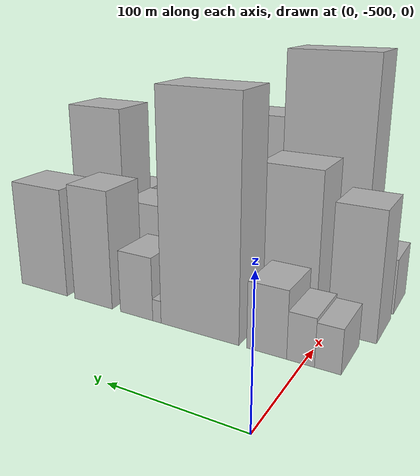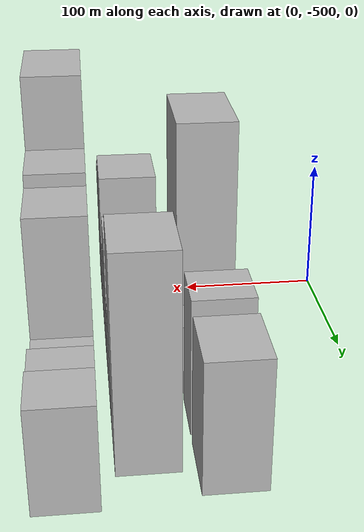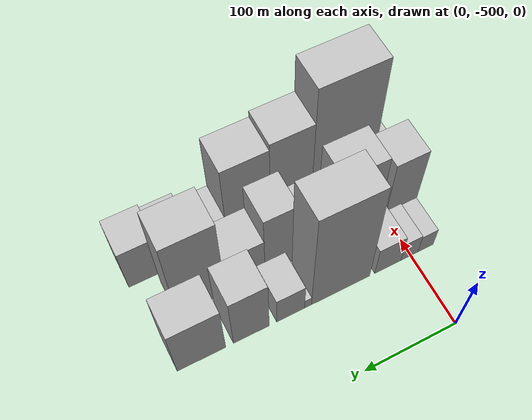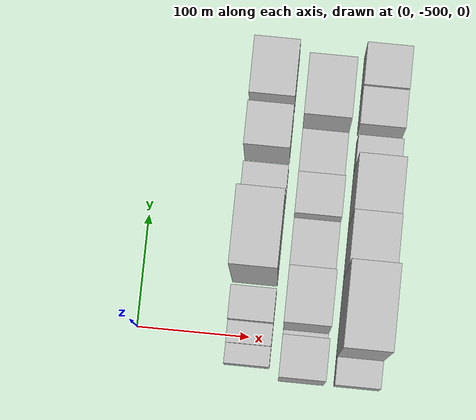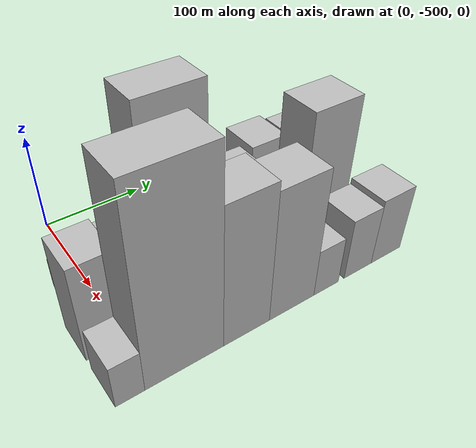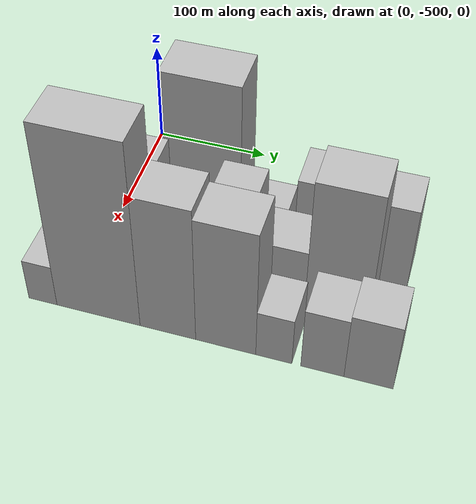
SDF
<sdf version="1.6">
 <world name="default">
  <model name="building_1">
   <static>1</static>
   <pose>100.0000 -516.9672 0 0.000000 0.000000 0.000000</pose>
   <link name="link">
    <pose>0 0 16.50 0 0 0</pose>
    <collision name="collision"><geometry><box><size>40.0000 18.0656 33.0000</size></box></geometry></collision>
    <visual name="visual">
     <cast_shadows>0</cast_shadows>
     <geometry><box><size>40.0000 18.0656 33.0000</size></box></geometry>
     <material>
      <script>
       <uri>model://HANNAS_wall/materials/scripts</uri>
       <uri>model://HANNAS_wall/materials/textures</uri>
       <name>vrc/HANNAS_wall</name>
      </script>
     </material>
    </visual>
   </link>
  </model>
  <model name="building_2">
   <static>1</static>
   <pose>100.0000 -498.0871 0 0.000000 0.000000 0.000000</pose>
   <link name="link">
    <pose>0 0 18.00 0 0 0</pose>
    <collision name="collision"><geometry><box><size>40.0000 19.6946 36.0000</size></box></geometry></collision>
    <visual name="visual">
     <cast_shadows>0</cast_shadows>
     <geometry><box><size>40.0000 19.6946 36.0000</size></box></geometry>
     <material>
      <script>
       <uri>model://HANNAS_wall/materials/scripts</uri>
       <uri>model://HANNAS_wall/materials/textures</uri>
       <name>vrc/HANNAS_wall</name>
      </script>
     </material>
    </visual>
   </link>
  </model>
  <model name="building_3">
   <static>1</static>
   <pose>100.0000 -473.3525 0 0.000000 0.000000 0.000000</pose>
   <link name="link">
    <pose>0 0 25.50 0 0 0</pose>
    <collision name="collision"><geometry><box><size>40.0000 29.7748 51.0000</size></box></geometry></collision>
    <visual name="visual">
     <cast_shadows>0</cast_shadows>
     <geometry><box><size>40.0000 29.7748 51.0000</size></box></geometry>
     <material>
      <script>
       <uri>model://HANNAS_wall/materials/scripts</uri>
       <uri>model://HANNAS_wall/materials/textures</uri>
       <name>vrc/HANNAS_wall</name>
      </script>
     </material>
    </visual>
   </link>
  </model>
  <model name="building_4">
   <static>1</static>
   <pose>100.0000 -420.0573 0 0.000000 0.000000 0.000000</pose>
   <link name="link">
    <pose>0 0 88.50 0 0 0</pose>
    <collision name="collision"><geometry><box><size>40.0000 64.8154 177.0000</size></box></geometry></collision>
    <visual name="visual">
     <cast_shadows>0</cast_shadows>
     <geometry><box><size>40.0000 64.8154 177.0000</size></box></geometry>
     <material>
      <script>
       <uri>model://HANNAS_wall/materials/scripts</uri>
       <uri>model://HANNAS_wall/materials/textures</uri>
       <name>vrc/HANNAS_wall</name>
      </script>
     </material>
    </visual>
   </link>
  </model>
  <model name="building_5">
   <static>1</static>
   <pose>100.0000 -383.9254 0 0.000000 0.000000 0.000000</pose>
   <link name="link">
    <pose>0 0 9.00 0 0 0</pose>
    <collision name="collision"><geometry><box><size>40.0000 7.4484 18.0000</size></box></geometry></collision>
    <visual name="visual">
     <cast_shadows>0</cast_shadows>
     <geometry><box><size>40.0000 7.4484 18.0000</size></box></geometry>
     <material>
      <script>
       <uri>model://HANNAS_wall/materials/scripts</uri>
       <uri>model://HANNAS_wall/materials/textures</uri>
       <name>vrc/HANNAS_wall</name>
      </script>
     </material>
    </visual>
   </link>
  </model>
  <model name="building_6">
   <static>1</static>
   <pose>100.0000 -365.1987 0 0.000000 0.000000 0.000000</pose>
   <link name="link">
    <pose>0 0 25.50 0 0 0</pose>
    <collision name="collision"><geometry><box><size>40.0000 30.0050 51.0000</size></box></geometry></collision>
    <visual name="visual">
     <cast_shadows>0</cast_shadows>
     <geometry><box><size>40.0000 30.0050 51.0000</size></box></geometry>
     <material>
      <script>
       <uri>model://HANNAS_wall/materials/scripts</uri>
       <uri>model://HANNAS_wall/materials/textures</uri>
       <name>vrc/HANNAS_wall</name>
      </script>
     </material>
    </visual>
   </link>
  </model>
  <model name="building_7">
   <static>1</static>
   <pose>100.0000 -323.3096 0 0.000000 0.000000 0.000000</pose>
   <link name="link">
    <pose>0 0 48.00 0 0 0</pose>
    <collision name="collision"><geometry><box><size>40.0000 37.7732 96.0000</size></box></geometry></collision>
    <visual name="visual">
     <cast_shadows>0</cast_shadows>
     <geometry><box><size>40.0000 37.7732 96.0000</size></box></geometry>
     <material>
      <script>
       <uri>model://HANNAS_wall/materials/scripts</uri>
       <uri>model://HANNAS_wall/materials/textures</uri>
       <name>vrc/HANNAS_wall</name>
      </script>
     </material>
    </visual>
   </link>
  </model>
  <model name="building_8">
   <static>1</static>
   <pose>100.0000 -271.5236 0 0.000000 0.000000 0.000000</pose>
   <link name="link">
    <pose>0 0 45.00 0 0 0</pose>
    <collision name="collision"><geometry><box><size>40.0000 49.7988 90.0000</size></box></geometry></collision>
    <visual name="visual">
     <cast_shadows>0</cast_shadows>
     <geometry><box><size>40.0000 49.7988 90.0000</size></box></geometry>
     <material>
      <script>
       <uri>model://HANNAS_wall/materials/scripts</uri>
       <uri>model://HANNAS_wall/materials/textures</uri>
       <name>vrc/HANNAS_wall</name>
      </script>
     </material>
    </visual>
   </link>
  </model>
  <model name="building_29">
   <static>1</static>
   <pose>149.0000 -517.9019 0 0.000000 0.000000 0.000000</pose>
   <link name="link">
    <pose>0 0 49.50 0 0 0</pose>
    <collision name="collision"><geometry><box><size>40.0000 36.1962 99.0000</size></box></geometry></collision>
    <visual name="visual">
     <cast_shadows>0</cast_shadows>
     <geometry><box><size>40.0000 36.1962 99.0000</size></box></geometry>
     <material>
      <script>
       <uri>model://HANNAS_wall/materials/scripts</uri>
       <uri>model://HANNAS_wall/materials/textures</uri>
       <name>vrc/HANNAS_wall</name>
      </script>
     </material>
    </visual>
   </link>
  </model>
  <model name="building_30">
   <static>1</static>
   <pose>149.0000 -495.4424 0 0.000000 0.000000 0.000000</pose>
   <link name="link">
    <pose>0 0 9.00 0 0 0</pose>
    <collision name="collision"><geometry><box><size>40.0000 8.7228 18.0000</size></box></geometry></collision>
    <visual name="visual">
     <cast_shadows>0</cast_shadows>
     <geometry><box><size>40.0000 8.7228 18.0000</size></box></geometry>
     <material>
      <script>
       <uri>model://HANNAS_wall/materials/scripts</uri>
       <uri>model://HANNAS_wall/materials/textures</uri>
       <name>vrc/HANNAS_wall</name>
      </script>
     </material>
    </visual>
   </link>
  </model>
  <model name="building_31">
   <static>1</static>
   <pose>149.0000 -467.1126 0 0.000000 0.000000 0.000000</pose>
   <link name="link">
    <pose>0 0 60.00 0 0 0</pose>
    <collision name="collision"><geometry><box><size>40.0000 47.9369 120.0000</size></box></geometry></collision>
    <visual name="visual">
     <cast_shadows>0</cast_shadows>
     <geometry><box><size>40.0000 47.9369 120.0000</size></box></geometry>
     <material>
      <script>
       <uri>model://HANNAS_wall/materials/scripts</uri>
       <uri>model://HANNAS_wall/materials/textures</uri>
       <name>vrc/HANNAS_wall</name>
      </script>
     </material>
    </visual>
   </link>
  </model>
  <model name="building_32">
   <static>1</static>
   <pose>149.0000 -420.7778 0 0.000000 0.000000 0.000000</pose>
   <link name="link">
    <pose>0 0 37.50 0 0 0</pose>
    <collision name="collision"><geometry><box><size>40.0000 44.7326 75.0000</size></box></geometry></collision>
    <visual name="visual">
     <cast_shadows>0</cast_shadows>
     <geometry><box><size>40.0000 44.7326 75.0000</size></box></geometry>
     <material>
      <script>
       <uri>model://HANNAS_wall/materials/scripts</uri>
       <uri>model://HANNAS_wall/materials/textures</uri>
       <name>vrc/HANNAS_wall</name>
      </script>
     </material>
    </visual>
   </link>
  </model>
  <model name="building_33">
   <static>1</static>
   <pose>149.0000 -380.7269 0 0.000000 0.000000 0.000000</pose>
   <link name="link">
    <pose>0 0 55.50 0 0 0</pose>
    <collision name="collision"><geometry><box><size>40.0000 35.3693 111.0000</size></box></geometry></collision>
    <visual name="visual">
     <cast_shadows>0</cast_shadows>
     <geometry><box><size>40.0000 35.3693 111.0000</size></box></geometry>
     <material>
      <script>
       <uri>model://HANNAS_wall/materials/scripts</uri>
       <uri>model://HANNAS_wall/materials/textures</uri>
       <name>vrc/HANNAS_wall</name>
      </script>
     </material>
    </visual>
   </link>
  </model>
  <model name="building_34">
   <static>1</static>
   <pose>149.0000 -341.5918 0 0.000000 0.000000 0.000000</pose>
   <link name="link">
    <pose>0 0 36.00 0 0 0</pose>
    <collision name="collision"><geometry><box><size>40.0000 42.9008 72.0000</size></box></geometry></collision>
    <visual name="visual">
     <cast_shadows>0</cast_shadows>
     <geometry><box><size>40.0000 42.9008 72.0000</size></box></geometry>
     <material>
      <script>
       <uri>model://HANNAS_wall/materials/scripts</uri>
       <uri>model://HANNAS_wall/materials/textures</uri>
       <name>vrc/HANNAS_wall</name>
      </script>
     </material>
    </visual>
   </link>
  </model>
  <model name="building_35">
   <static>1</static>
   <pose>149.0000 -294.4641 0 0.000000 0.000000 0.000000</pose>
   <link name="link">
    <pose>0 0 73.50 0 0 0</pose>
    <collision name="collision"><geometry><box><size>40.0000 51.3547 147.0000</size></box></geometry></collision>
    <visual name="visual">
     <cast_shadows>0</cast_shadows>
     <geometry><box><size>40.0000 51.3547 147.0000</size></box></geometry>
     <material>
      <script>
       <uri>model://HANNAS_wall/materials/scripts</uri>
       <uri>model://HANNAS_wall/materials/textures</uri>
       <name>vrc/HANNAS_wall</name>
      </script>
     </material>
    </visual>
   </link>
  </model>
  <model name="building_59">
   <static>1</static>
   <pose>198.0000 -523.7480 0 0.000000 0.000000 0.000000</pose>
   <link name="link">
    <pose>0 0 22.50 0 0 0</pose>
    <collision name="collision"><geometry><box><size>40.0000 24.5040 45.0000</size></box></geometry></collision>
    <visual name="visual">
     <cast_shadows>0</cast_shadows>
     <geometry><box><size>40.0000 24.5040 45.0000</size></box></geometry>
     <material>
      <script>
       <uri>model://HANNAS_wall/materials/scripts</uri>
       <uri>model://HANNAS_wall/materials/textures</uri>
       <name>vrc/HANNAS_wall</name>
      </script>
     </material>
    </visual>
   </link>
  </model>
  <model name="building_60">
   <static>1</static>
   <pose>198.0000 -476.0242 0 0.000000 0.000000 0.000000</pose>
   <link name="link">
    <pose>0 0 97.50 0 0 0</pose>
    <collision name="collision"><geometry><box><size>40.0000 70.9437 195.0000</size></box></geometry></collision>
    <visual name="visual">
     <cast_shadows>0</cast_shadows>
     <geometry><box><size>40.0000 70.9437 195.0000</size></box></geometry>
     <material>
      <script>
       <uri>model://HANNAS_wall/materials/scripts</uri>
       <uri>model://HANNAS_wall/materials/textures</uri>
       <name>vrc/HANNAS_wall</name>
      </script>
     </material>
    </visual>
   </link>
  </model>
  <model name="building_61">
   <static>1</static>
   <pose>198.0000 -417.5375 0 0.000000 0.000000 0.000000</pose>
   <link name="link">
    <pose>0 0 72.00 0 0 0</pose>
    <collision name="collision"><geometry><box><size>40.0000 46.0296 144.0000</size></box></geometry></collision>
    <visual name="visual">
     <cast_shadows>0</cast_shadows>
     <geometry><box><size>40.0000 46.0296 144.0000</size></box></geometry>
     <material>
      <script>
       <uri>model://HANNAS_wall/materials/scripts</uri>
       <uri>model://HANNAS_wall/materials/textures</uri>
       <name>vrc/HANNAS_wall</name>
      </script>
     </material>
    </visual>
   </link>
  </model>
  <model name="building_62">
   <static>1</static>
   <pose>198.0000 -370.2326 0 0.000000 0.000000 0.000000</pose>
   <link name="link">
    <pose>0 0 67.50 0 0 0</pose>
    <collision name="collision"><geometry><box><size>40.0000 48.5803 135.0000</size></box></geometry></collision>
    <visual name="visual">
     <cast_shadows>0</cast_shadows>
     <geometry><box><size>40.0000 48.5803 135.0000</size></box></geometry>
     <material>
      <script>
       <uri>model://HANNAS_wall/materials/scripts</uri>
       <uri>model://HANNAS_wall/materials/textures</uri>
       <name>vrc/HANNAS_wall</name>
      </script>
     </material>
    </visual>
   </link>
  </model>
  <model name="building_63">
   <static>1</static>
   <pose>198.0000 -331.6505 0 0.000000 0.000000 0.000000</pose>
   <link name="link">
    <pose>0 0 25.50 0 0 0</pose>
    <collision name="collision"><geometry><box><size>40.0000 28.5839 51.0000</size></box></geometry></collision>
    <visual name="visual">
     <cast_shadows>0</cast_shadows>
     <geometry><box><size>40.0000 28.5839 51.0000</size></box></geometry>
     <material>
      <script>
       <uri>model://HANNAS_wall/materials/scripts</uri>
       <uri>model://HANNAS_wall/materials/textures</uri>
       <name>vrc/HANNAS_wall</name>
      </script>
     </material>
    </visual>
   </link>
  </model>
  <model name="building_64">
   <static>1</static>
   <pose>198.0000 -293.5854 0 0.000000 0.000000 0.000000</pose>
   <link name="link">
    <pose>0 0 33.00 0 0 0</pose>
    <collision name="collision"><geometry><box><size>40.0000 33.5462 66.0000</size></box></geometry></collision>
    <visual name="visual">
     <cast_shadows>0</cast_shadows>
     <geometry><box><size>40.0000 33.5462 66.0000</size></box></geometry>
     <material>
      <script>
       <uri>model://HANNAS_wall/materials/scripts</uri>
       <uri>model://HANNAS_wall/materials/textures</uri>
       <name>vrc/HANNAS_wall</name>
      </script>
     </material>
    </visual>
   </link>
  </model>
  <model name="building_65">
   <static>1</static>
   <pose>198.0000 -258.0170 0 0.000000 0.000000 0.000000</pose>
   <link name="link">
    <pose>0 0 36.00 0 0 0</pose>
    <collision name="collision"><geometry><box><size>40.0000 37.5907 72.0000</size></box></geometry></collision>
    <visual name="visual">
     <cast_shadows>0</cast_shadows>
     <geometry><box><size>40.0000 37.5907 72.0000</size></box></geometry>
     <material>
      <script>
       <uri>model://HANNAS_wall/materials/scripts</uri>
       <uri>model://HANNAS_wall/materials/textures</uri>
       <name>vrc/HANNAS_wall</name>
      </script>
     </material>
    </visual>
   </link>
  </model>
 </world>
</sdf>
